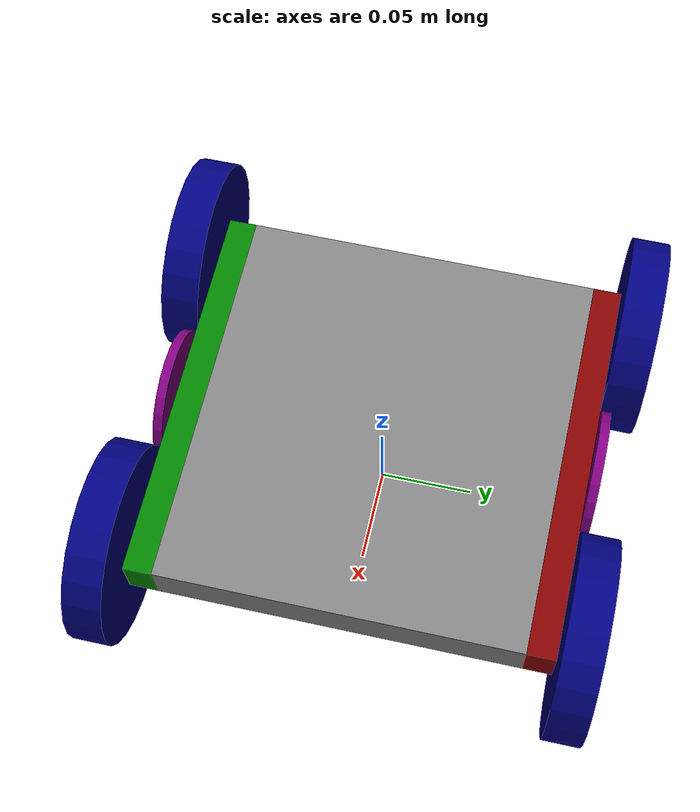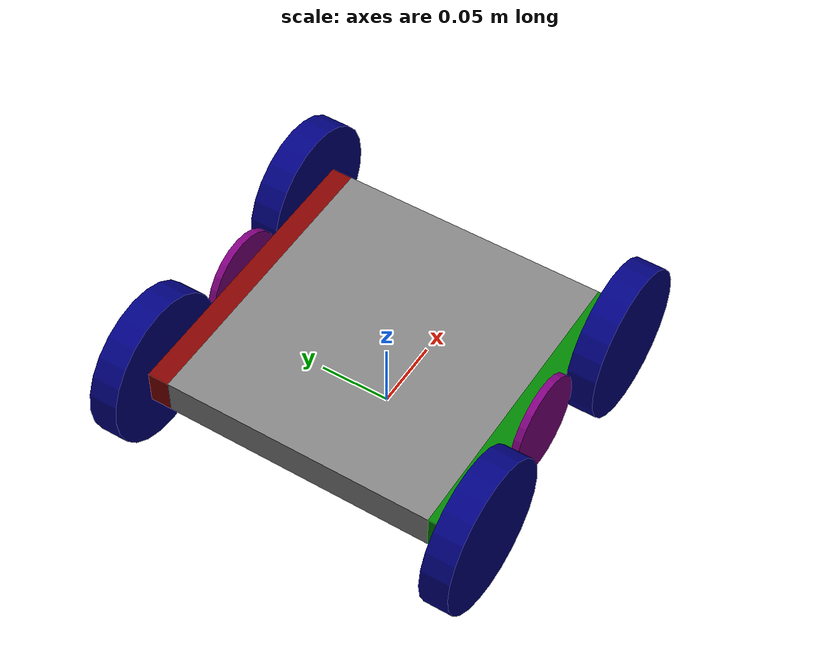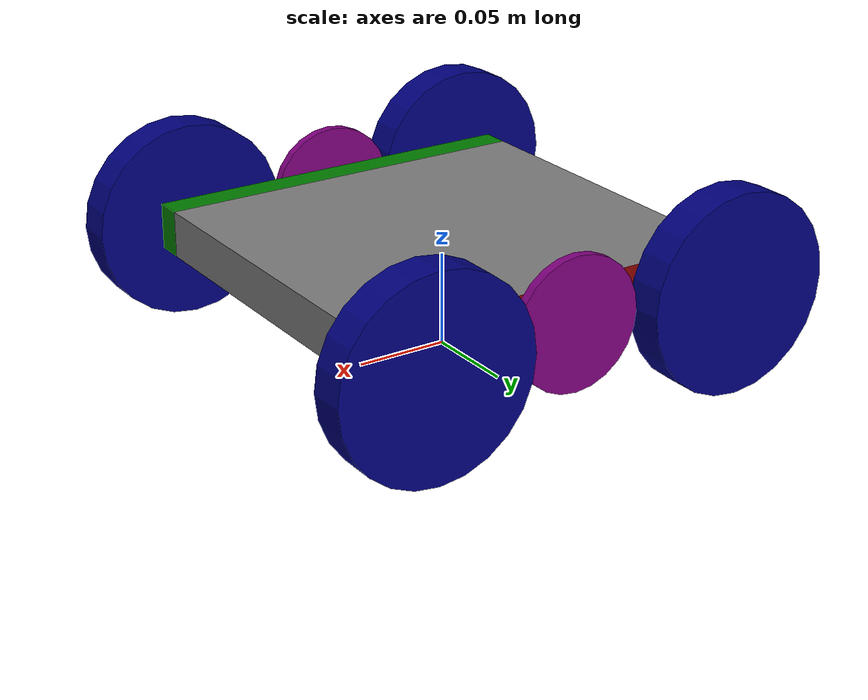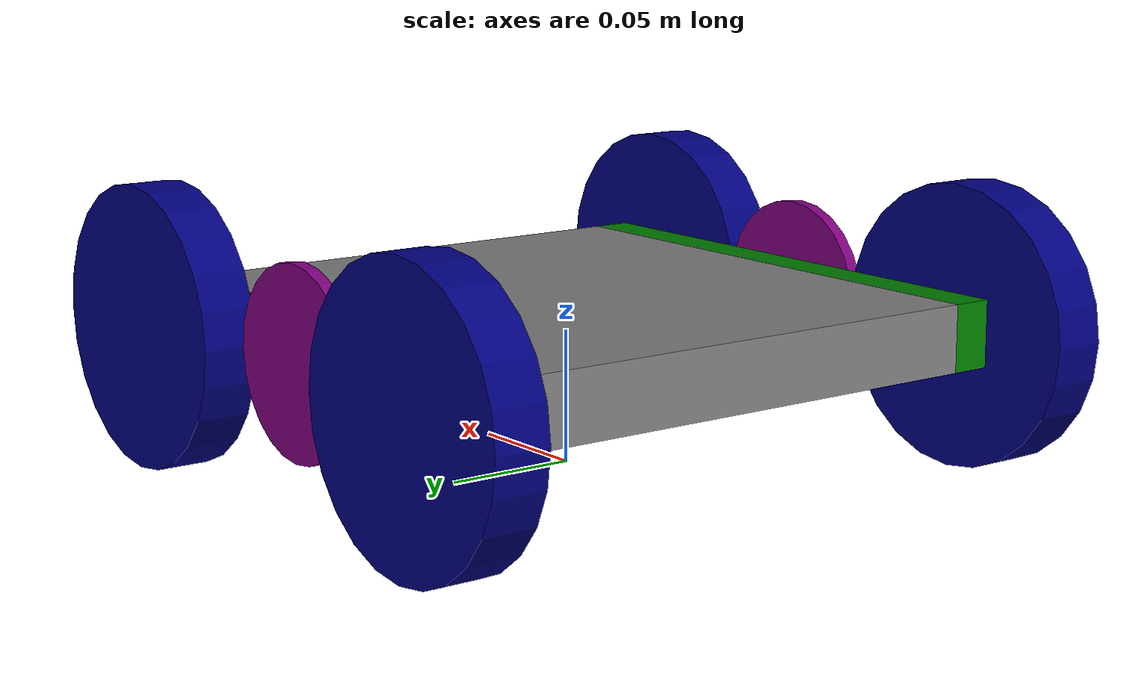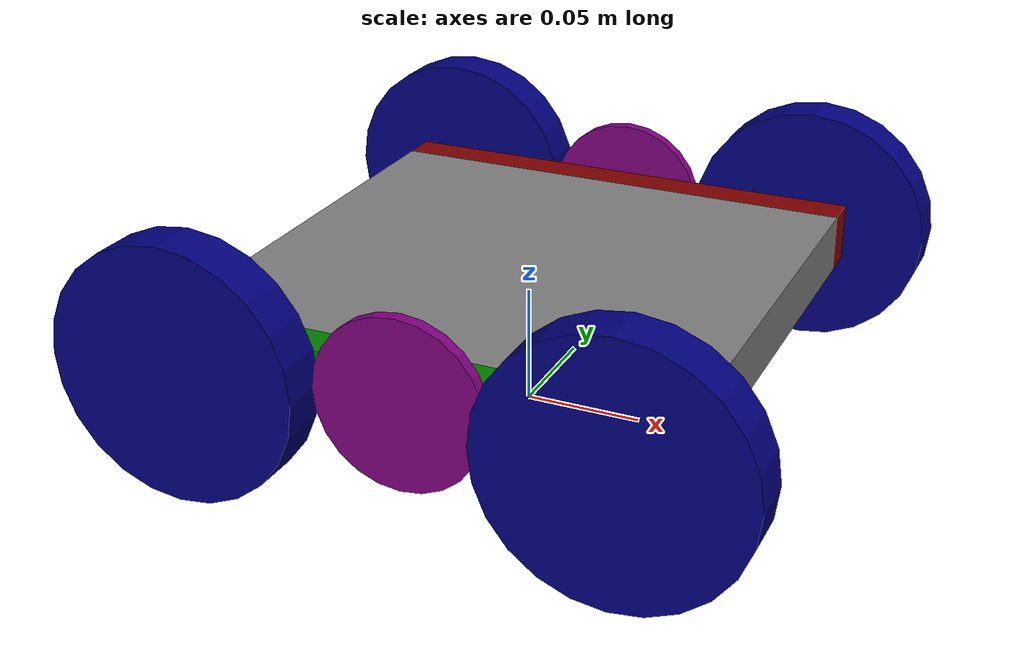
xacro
<?xml version="1.0"?>
<robot name="fetchbot" xmlns:xacro="http://www.ros.org/wiki/xacro">

    <xacro:include filename="common_properties.xacro" />
    <xacro:include filename="mobile_base.xacro" />
    <xacro:include filename="mobile_base_gazebo.xacro" />

</robot>

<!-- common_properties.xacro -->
<robot xmlns:xacro="http://www.ros.org/wiki/xacro">

    <xacro:property name="alpha" value="1" />

   <material name="white">
        <color rgba="1 1 1 ${alpha}"/>
    </material>

    <material name="red">
        <color rgba="0.5 0 0 ${alpha}"/>
    </material>

    <material name="green">
        <color rgba="0 0.5 0 ${alpha}"/>
    </material>

    <material name="blue">
        <color rgba="0 0 0.5 ${alpha}"/>
    </material>

    <material name="grey">
        <color rgba="0.5 0.5 0.5 ${alpha}"/>
    </material>

    <material name="purple">
        <color rgba="0.5 0 0.5 ${alpha}"/>
    </material>

    <xacro:macro name="box_inertia" params="m l w h xyz rpy">
        <inertial>
            <origin xyz="${xyz}" rpy="${rpy}" />
            <mass value="${m}" />
            <inertia ixx="${(m/12) * (h*h + l*l)}" ixy="0" ixz="0"
                     iyy="${(m/12) * (w*w + l*l)}" iyz="0"
                     izz="${(m/12) * (w*w + h*h)}" />
        </inertial>
    </xacro:macro>

    <xacro:macro name="cylinder_inertia" params="m r h xyz rpy">
        <inertial>
            <origin xyz="${xyz}" rpy="${rpy}" />
            <mass value="${m}" />
            <inertia ixx="${(m/12) * (3*r*r + h*h)}" ixy="0" ixz="0"
                     iyy="${(m/12) * (3*r*r + h*h)}" iyz="0"
                     izz="${(m/2) * (r*r)}" />
        </inertial>
    </xacro:macro>

    <xacro:macro name="sphere_inertia" params="m r xyz rpy">
        <inertial>
            <origin xyz="${xyz}" rpy="${rpy}" />
            <mass value="${m}" />
            <inertia ixx="${(2/5) * m * r * r}" ixy="0" ixz="0"
                     iyy="${(2/5) * m * r * r}" iyz="0"
                     izz="${(2/5) * m * r * r}" />
        </inertial>
    </xacro:macro>

</robot>

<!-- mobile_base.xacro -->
<robot xmlns:xacro="http://www.ros.org/wiki/xacro">

    <xacro:property name="base_length" value="0.21" />
    <xacro:property name="base_width" value="0.19" />
    <xacro:property name="base_height" value="0.025" />
    <xacro:property name="wheels_base_width" value="0.015" />
    <xacro:property name="wheel_length" value="0.02" />
    <xacro:property name="wheel_radius" value="0.0525" />
    <xacro:property name="motor_length" value="0.005" />
    <xacro:property name="motor_radius" value="0.035" />

    <link name="base_footprint"/>

    <link name="base_link">
        <visual>
            <geometry>
                <box size="${base_length} ${base_width} ${base_height}"/>
            </geometry>
            <origin xyz="0 0 ${base_height / 2.0}" rpy="0 0 0"/>
            <material name="grey"/>
        </visual>
        <collision>
            <geometry>
                <box size="${base_length} ${base_width} ${base_height}"/>
            </geometry>
            <origin xyz="0 0 ${base_height / 2.0}" rpy="0 0 0"/>
        </collision>
        <xacro:box_inertia m="2.0" l="${base_length}" w="${base_width}" h="${base_height}"
                           xyz="0 0 ${base_height / 2.0}" rpy="0 0 0" />
    </link>

    <xacro:macro name="wheels_base_link" params="prefix direction color">
        <link name="${prefix}_wheels_base_link">
            <visual>
                <geometry>
                    <box size="${base_length} ${wheels_base_width} ${base_height}"/>
                </geometry>
                <origin xyz="0 ${direction * wheels_base_width / 2.0} 0" rpy="0 0 0"/>
                <material name="${color}"/>
            </visual>
            <collision>
                <geometry>
                    <box size="${base_length} ${wheels_base_width} ${base_height}"/>
                </geometry>
                <origin xyz="0 ${direction * wheels_base_width / 2.0} 0" rpy="0 0 0"/>
            </collision>
            <xacro:box_inertia m="0.3" l="${base_length}" w="${wheels_base_width}" h="${base_height}"
                            xyz="0 ${direction * wheels_base_width / 2.0} 0" rpy="0 0 0"/>
        </link>
    </xacro:macro>

    <xacro:wheels_base_link prefix="left" direction="1" color="red" />
    <xacro:wheels_base_link prefix="right" direction="-1" color="green" />

    <xacro:macro name="motor_link" params="prefix">
        <link name="${prefix}_motor_link">
            <visual>
                <geometry>
                    <cylinder radius="${motor_radius}" length="${motor_length}"/>
                </geometry>
                <origin xyz="0 0 0" rpy="${pi / 2.0} 0 0"/>
                <material name="purple"/>
            </visual>
            <collision>
                <geometry>
                    <cylinder radius="${motor_radius}" length="${motor_length}"/>
                </geometry>
                <origin xyz="0 0 0" rpy="${pi / 2.0} 0 0"/>
            </collision>
             <xacro:cylinder_inertia m="0.1" r="${motor_radius}" h="${motor_length}"
                            xyz="0 0 0" rpy="${pi / 2.0} 0 0"/>
        </link>
    </xacro:macro>

    <xacro:motor_link prefix="left" />
    <xacro:motor_link prefix="right" />

    <xacro:macro name="wheel_link" params="prefix">
        <link name="${prefix}_wheel_link">
            <visual>
                <geometry>
                    <cylinder radius="${wheel_radius}" length="${wheel_length}"/>
                </geometry>
                <origin xyz="0 0 0" rpy="${pi / 2.0} 0 0"/>
                <material name="blue"/>
            </visual>
            <collision>
                <geometry>
                    <sphere radius="${wheel_radius}" />
                </geometry>
                <origin xyz="0 0 0" rpy="${pi / 2.0} 0 0"/>
            </collision>
             <xacro:cylinder_inertia m="0.1" r="${wheel_radius}" h="${wheel_length}"
                            xyz="0 0 0" rpy="${pi / 2.0} 0 0"/>
        </link>
    </xacro:macro>

    <xacro:wheel_link prefix="left_front" />
    <xacro:wheel_link prefix="left_back" />
    <xacro:wheel_link prefix="right_front" />
    <xacro:wheel_link prefix="right_back" />

    <joint name="base_joint" type="fixed">
        <parent link="base_footprint"/>
        <child link="base_link"/>
        <origin xyz="0 0 ${wheel_radius - (base_height / 2.0)}" rpy="0 0 0"/>
    </joint>

    <xacro:macro name="base_wheels_base_joint" params="prefix direction">
        <joint name="base_${prefix}_wheels_base_joint" type="fixed">
            <parent link="base_link"/>
            <child link="${prefix}_wheels_base_link"/>
            <origin xyz="0 ${direction * base_width / 2.0} ${base_height / 2.0}" rpy="0 0 0"/>
        </joint>
    </xacro:macro>

    <xacro:base_wheels_base_joint prefix="left" direction="1" />
    <xacro:base_wheels_base_joint prefix="right" direction="-1" />

    <xacro:macro name="wheels_base_motor_joint" params="prefix direction">
        <joint name="${prefix}_wheels_base_${prefix}_motor_joint" type="continuous">
            <parent link="${prefix}_wheels_base_link"/>
            <child link="${prefix}_motor_link"/>
            <origin xyz="0 ${direction * (wheels_base_width + (motor_length / 2.0))} 0" rpy="0 0 0"/>
            <axis xyz="0 1 0"/>
        </joint>
    </xacro:macro>

    <xacro:wheels_base_motor_joint prefix="left" direction="1" />
    <xacro:wheels_base_motor_joint prefix="right" direction="-1" />

    <xacro:macro name="wheels_base_wheel_joint" params="prefix1 prefix2 direction1 direction2">
        <joint name="${prefix1}_wheels_base_${prefix1}_${prefix2}_wheel_joint" type="continuous">
            <parent link="${prefix1}_wheels_base_link"/>
            <child link="${prefix1}_${prefix2}_wheel_link"/>
            <origin xyz="${direction1 * (motor_radius + wheel_radius)} ${direction2 * (wheels_base_width + (wheel_length / 2.0))} 0" rpy="0 0 0"/>
            <axis xyz="0 1 0"/>
            <mimic joint="${prefix1}_wheels_base_${prefix1}_motor_joint" multiplier="1" offset="0"/>
        </joint>
    </xacro:macro>

    <xacro:wheels_base_wheel_joint prefix1="left" prefix2="front" direction1="1" direction2="1" />
    <xacro:wheels_base_wheel_joint prefix1="left" prefix2="back" direction1="-1" direction2="1" />
    <xacro:wheels_base_wheel_joint prefix1="right" prefix2="front" direction1="1" direction2="-1" />
    <xacro:wheels_base_wheel_joint prefix1="right" prefix2="back" direction1="-1" direction2="-1" />

</robot>
